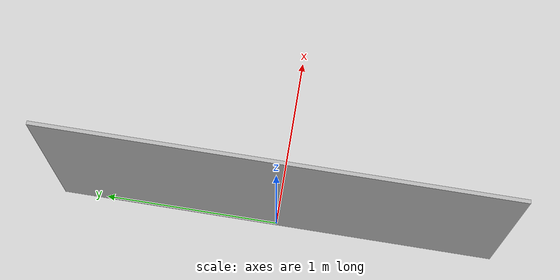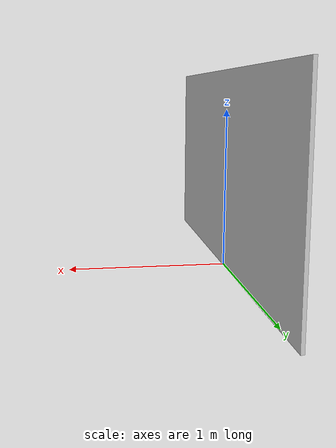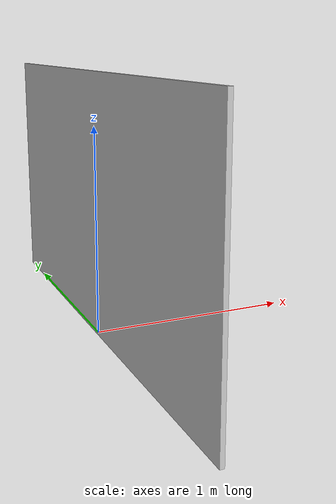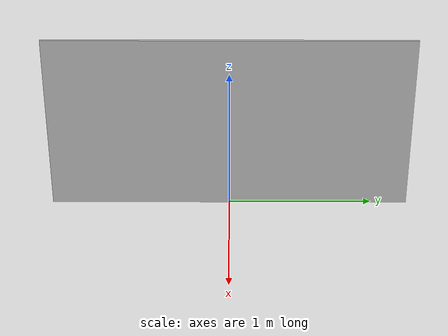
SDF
<?xml version="1.0" ?>
<sdf version="1.5">
  <model name="object_robocup_wall250">
    <static>true</static>
    <link name="link">
      <collision name="surface">
        <pose>0 0 0 0 0 0</pose>
        <geometry>
          <mesh>
			  <scale>1 1 1</scale>
            <uri>model://object_robocup_wall250/meshes/object_robocup_wall250.dae</uri>
          </mesh>
        </geometry>
      </collision>

      <visual name="visual">
		<pose>0 0 0 0 0 0</pose>
        <geometry>
          <mesh>
            <uri>model://object_robocup_wall250/meshes/object_robocup_wall250.dae</uri>
          </mesh>
        </geometry>
      </visual>
    </link>
  </model>
</sdf>
